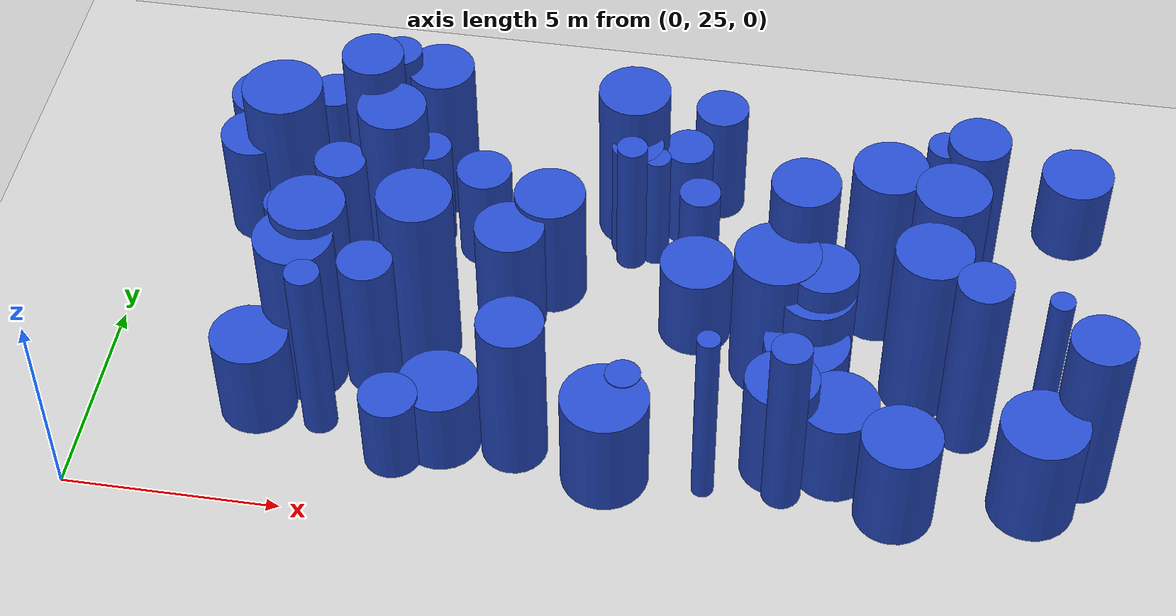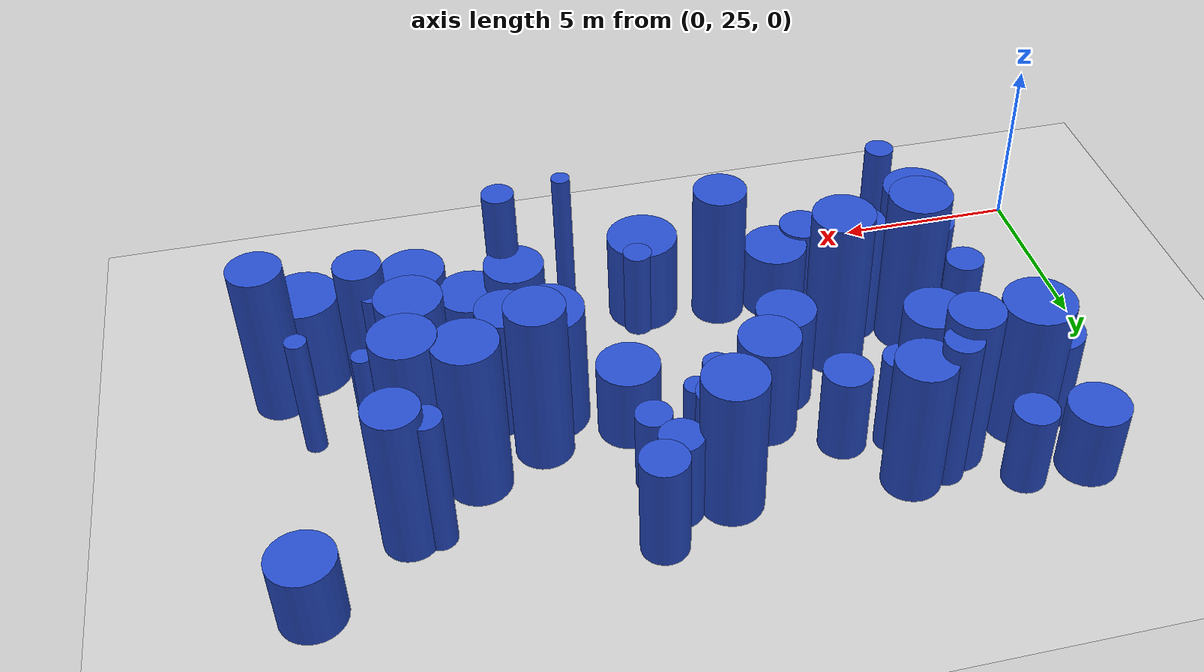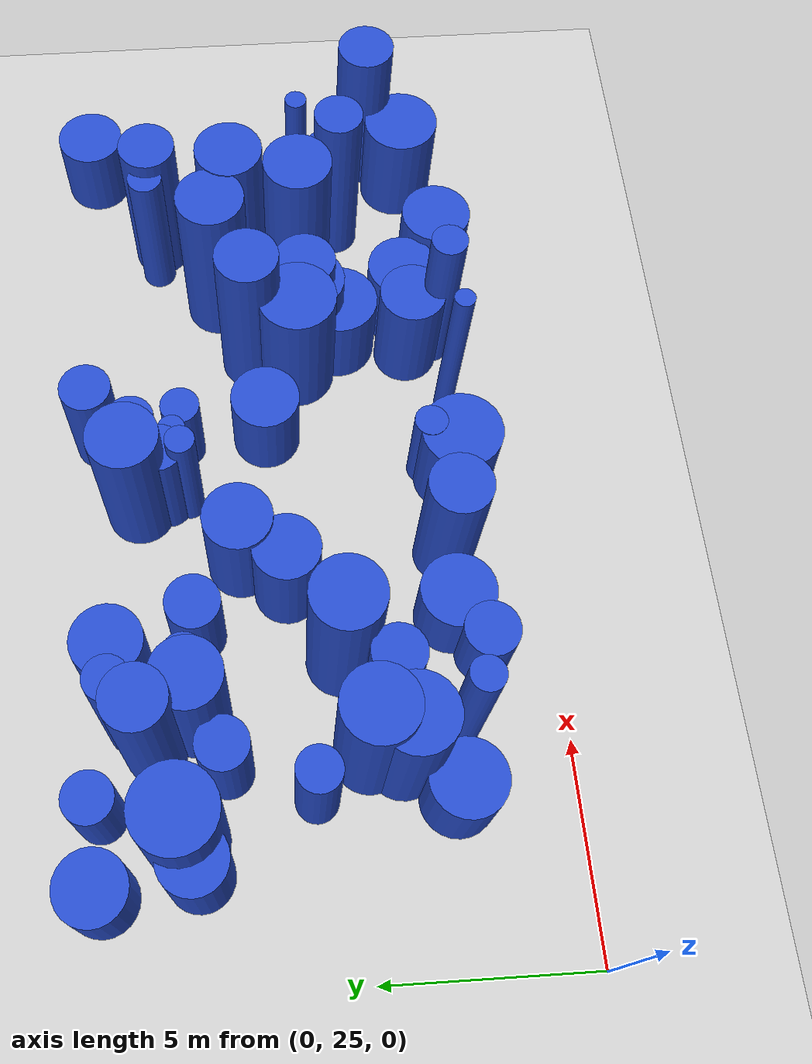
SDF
<sdf version="1.6">
 <world name="default">
  <model name="ground_plane">
   <static>1</static>
   <link name="link">
    <collision name="collision">
     <geometry><plane><normal>0 0 1</normal><size>100 100</size></plane></geometry>
     <surface><friction><ode><mu>100</mu><mu2>50</mu2></ode></friction></surface>
    </collision>
    <visual name="visual">
     <cast_shadows>0</cast_shadows>
     <geometry><plane><normal>0 0 1</normal><size>100 100</size></plane></geometry>
     <material>
      <script><uri>file://media/materials/scripts/gazebo.material</uri><name>Gazebo/Grey</name></script>
     </material>
    </visual>
   </link>
  </model>
  <model name="1">
   <static>0</static>
   <link name="link">
    <inertial>
     <mass>2</mass>
     <inertia><ixx>1.21264</ixx><ixy>0</ixy><ixz>0</ixz><iyy>1.21264</iyy><iyz>0</iyz><izz>0.729702</izz></inertia>
    </inertial>
    <collision name="collision">
     <geometry><cylinder><length>2.25538</length><radius>0.854226</radius></cylinder></geometry>
     <surface><contact><collide_without_contact>1</collide_without_contact></contact></surface>
    </collision>
    <visual name="visual">
     <geometry><cylinder><length>2.25538</length><radius>0.854226</radius></cylinder></geometry>
     <material>
      <script><uri>file://media/materials/scripts/gazebo.material</uri><name>Gazebo/Blue</name></script>
     </material>
    </visual>
    <gravity>0</gravity>
   </link>
   <pose>13.3804 31.6772 1.12769 0 -0 0</pose>
  </model>
  <model name="4">
   <static>0</static>
   <link name="link">
    <inertial>
     <mass>2</mass>
     <inertia>
      <ixx>2.26503</ixx>
      <ixy>0</ixy>
      <ixz>0</ixz>
      <iyy>2.26503</iyy>
      <iyz>0</iyz>
      <izz>0.0810352</izz>
     </inertia>
    </inertial>
    <collision name="collision">
     <geometry><cylinder><length>3.65337</length><radius>0.284667</radius></cylinder></geometry>
     <surface><contact><collide_without_contact>1</collide_without_contact></contact></surface>
    </collision>
    <visual name="visual">
     <geometry><cylinder><length>3.65337</length><radius>0.284667</radius></cylinder></geometry>
     <material>
      <script><uri>file://media/materials/scripts/gazebo.material</uri><name>Gazebo/Blue</name></script>
     </material>
    </visual>
    <gravity>0</gravity>
   </link>
   <pose>21.5602 30.4174 1.82668 0 -0 0</pose>
  </model>
  <model name="5">
   <static>0</static>
   <link name="link">
    <inertial>
     <mass>2</mass>
     <inertia><ixx>2.0117</ixx><ixy>0</ixy><ixz>0</ixz><iyy>2.0117</iyy><iyz>0</iyz><izz>0.692416</izz></inertia>
    </inertial>
    <collision name="collision">
     <geometry><cylinder><length>3.16116</length><radius>0.832116</radius></cylinder></geometry>
     <surface><contact><collide_without_contact>1</collide_without_contact></contact></surface>
    </collision>
    <visual name="visual">
     <geometry><cylinder><length>3.16116</length><radius>0.832116</radius></cylinder></geometry>
     <material>
      <script><uri>file://media/materials/scripts/gazebo.material</uri><name>Gazebo/Blue</name></script>
     </material>
    </visual>
    <gravity>0</gravity>
   </link>
   <pose>9.83556 32.4698 1.58058 0 -0 0</pose>
  </model>
  <model name="6">
   <static>0</static>
   <link name="link">
    <inertial>
     <mass>2</mass>
     <inertia><ixx>1.5744</ixx><ixy>0</ixy><ixz>0</ixz><iyy>1.5744</iyy><iyz>0</iyz><izz>0.233531</izz></inertia>
    </inertial>
    <collision name="collision">
     <geometry><cylinder><length>2.95733</length><radius>0.483251</radius></cylinder></geometry>
     <surface><contact><collide_without_contact>1</collide_without_contact></contact></surface>
    </collision>
    <visual name="visual">
     <geometry><cylinder><length>2.95733</length><radius>0.483251</radius></cylinder></geometry>
     <material>
      <script><uri>file://media/materials/scripts/gazebo.material</uri><name>Gazebo/Blue</name></script>
     </material>
    </visual>
    <gravity>0</gravity>
   </link>
   <pose>6.75771 33.7908 1.47867 0 -0 0</pose>
  </model>
  <model name="7">
   <static>0</static>
   <link name="link">
    <inertial>
     <mass>2</mass>
     <inertia><ixx>4.42007</ixx><ixy>0</ixy><ixz>0</ixz><iyy>4.42007</iyy><iyz>0</iyz><izz>0.725358</izz></inertia>
    </inertial>
    <collision name="collision">
     <geometry><cylinder><length>4.934</length><radius>0.85168</radius></cylinder></geometry>
     <surface><contact><collide_without_contact>1</collide_without_contact></contact></surface>
    </collision>
    <visual name="visual">
     <geometry><cylinder><length>4.934</length><radius>0.85168</radius></cylinder></geometry>
     <material>
      <script><uri>file://media/materials/scripts/gazebo.material</uri><name>Gazebo/Blue</name></script>
     </material>
    </visual>
    <gravity>0</gravity>
   </link>
   <pose>7.21815 30.2077 2.467 0 -0 0</pose>
  </model>
  <model name="16">
   <static>0</static>
   <link name="link">
    <inertial>
     <mass>2</mass>
     <inertia><ixx>1.32738</ixx><ixy>0</ixy><ixz>0</ixz><iyy>1.32738</iyy><iyz>0</iyz><izz>0.945054</izz></inertia>
    </inertial>
    <collision name="collision">
     <geometry><cylinder><length>2.26476</length><radius>0.972139</radius></cylinder></geometry>
     <surface><contact><collide_without_contact>1</collide_without_contact></contact></surface>
    </collision>
    <visual name="visual">
     <geometry><cylinder><length>2.26476</length><radius>0.972139</radius></cylinder></geometry>
     <material>
      <script><uri>file://media/materials/scripts/gazebo.material</uri><name>Gazebo/Blue</name></script>
     </material>
    </visual>
    <gravity>0</gravity>
   </link>
   <pose>16.1139 29.627 1.13238 0 -0 0</pose>
  </model>
  <model name="19">
   <static>0</static>
   <link name="link">
    <inertial>
     <mass>2</mass>
     <inertia><ixx>1.33118</ixx><ixy>0</ixy><ixz>0</ixz><iyy>1.33118</iyy><iyz>0</iyz><izz>0.426868</izz></inertia>
    </inertial>
    <collision name="collision">
     <geometry><cylinder><length>2.58969</length><radius>0.653352</radius></cylinder></geometry>
     <surface><contact><collide_without_contact>1</collide_without_contact></contact></surface>
    </collision>
    <visual name="visual">
     <geometry><cylinder><length>2.58969</length><radius>0.653352</radius></cylinder></geometry>
     <material>
      <script><uri>file://media/materials/scripts/gazebo.material</uri><name>Gazebo/Blue</name></script>
     </material>
    </visual>
    <gravity>0</gravity>
   </link>
   <pose>8.06166 33.5749 1.29484 0 -0 0</pose>
  </model>
  <model name="29">
   <static>0</static>
   <link name="link">
    <inertial>
     <mass>2</mass>
     <inertia><ixx>1.08444</ixx><ixy>0</ixy><ixz>0</ixz><iyy>1.08444</iyy><iyz>0</iyz><izz>0.820187</izz></inertia>
    </inertial>
    <collision name="collision">
     <geometry><cylinder><length>2.01148</length><radius>0.905642</radius></cylinder></geometry>
     <surface><contact><collide_without_contact>1</collide_without_contact></contact></surface>
    </collision>
    <visual name="visual">
     <geometry><cylinder><length>2.01148</length><radius>0.905642</radius></cylinder></geometry>
     <material>
      <script><uri>file://media/materials/scripts/gazebo.material</uri><name>Gazebo/Blue</name></script>
     </material>
    </visual>
    <gravity>0</gravity>
   </link>
   <pose>8.17215 27.4661 1.00574 0 -0 0</pose>
  </model>
  <model name="48">
   <static>0</static>
   <link name="link">
    <inertial>
     <mass>2</mass>
     <inertia><ixx>2.37656</ixx><ixy>0</ixy><ixz>0</ixz><iyy>2.37656</iyy><iyz>0</iyz><izz>0.127367</izz></inertia>
    </inertial>
    <collision name="collision">
     <geometry><cylinder><length>3.72522</length><radius>0.356886</radius></cylinder></geometry>
     <surface><contact><collide_without_contact>1</collide_without_contact></contact></surface>
    </collision>
    <visual name="visual">
     <geometry><cylinder><length>3.72522</length><radius>0.356886</radius></cylinder></geometry>
     <material>
      <script><uri>file://media/materials/scripts/gazebo.material</uri><name>Gazebo/Blue</name></script>
     </material>
    </visual>
    <gravity>0</gravity>
   </link>
   <pose>11.5725 33.7002 1.86261 0 -0 0</pose>
  </model>
  <model name="56">
   <static>0</static>
   <link name="link">
    <inertial>
     <mass>2</mass>
     <inertia><ixx>3.59824</ixx><ixy>0</ixy><ixz>0</ixz><iyy>3.59824</iyy><iyz>0</iyz><izz>0.250935</izz></inertia>
    </inertial>
    <collision name="collision">
     <geometry><cylinder><length>4.56471</length><radius>0.500934</radius></cylinder></geometry>
     <surface><contact><collide_without_contact>1</collide_without_contact></contact></surface>
    </collision>
    <visual name="visual">
     <geometry><cylinder><length>4.56471</length><radius>0.500934</radius></cylinder></geometry>
     <material>
      <script><uri>file://media/materials/scripts/gazebo.material</uri><name>Gazebo/Blue</name></script>
     </material>
    </visual>
    <gravity>0</gravity>
   </link>
   <pose>5.82661 35.2325 2.28236 0 -0 0</pose>
  </model>
  <model name="58">
   <static>0</static>
   <link name="link">
    <inertial>
     <mass>2</mass>
     <inertia>
      <ixx>0.949847</ixx>
      <ixy>0</ixy>
      <ixz>0</ixz>
      <iyy>0.949847</iyy>
      <iyz>0</iyz>
      <izz>0.437259</izz>
     </inertia>
    </inertial>
    <collision name="collision">
     <geometry><cylinder><length>2.09459</length><radius>0.661256</radius></cylinder></geometry>
     <surface><contact><collide_without_contact>1</collide_without_contact></contact></surface>
    </collision>
    <visual name="visual">
     <geometry><cylinder><length>2.09459</length><radius>0.661256</radius></cylinder></geometry>
     <material>
      <script><uri>file://media/materials/scripts/gazebo.material</uri><name>Gazebo/Blue</name></script>
     </material>
    </visual>
    <gravity>0</gravity>
   </link>
   <pose>7.17508 26.8264 1.0473 0 -0 0</pose>
  </model>
  <model name="67">
   <static>0</static>
   <link name="link">
    <inertial>
     <mass>2</mass>
     <inertia><ixx>1.85481</ixx><ixy>0</ixy><ixz>0</ixz><iyy>1.85481</iyy><iyz>0</iyz><izz>0.656961</izz></inertia>
    </inertial>
    <collision name="collision">
     <geometry><cylinder><length>3.02622</length><radius>0.810531</radius></cylinder></geometry>
     <surface><contact><collide_without_contact>1</collide_without_contact></contact></surface>
    </collision>
    <visual name="visual">
     <geometry><cylinder><length>3.02622</length><radius>0.810531</radius></cylinder></geometry>
     <material>
      <script><uri>file://media/materials/scripts/gazebo.material</uri><name>Gazebo/Blue</name></script>
     </material>
    </visual>
    <gravity>0</gravity>
   </link>
   <pose>9.07332 31.391 1.51311 0 -0 0</pose>
  </model>
  <model name="82">
   <static>0</static>
   <link name="link">
    <inertial>
     <mass>2</mass>
     <inertia><ixx>4.3118</ixx><ixy>0</ixy><ixz>0</ixz><iyy>4.3118</iyy><iyz>0</iyz><izz>0.716324</izz></inertia>
    </inertial>
    <collision name="collision">
     <geometry><cylinder><length>4.8705</length><radius>0.846359</radius></cylinder></geometry>
     <surface><contact><collide_without_contact>1</collide_without_contact></contact></surface>
    </collision>
    <visual name="visual">
     <geometry><cylinder><length>4.8705</length><radius>0.846359</radius></cylinder></geometry>
     <material>
      <script><uri>file://media/materials/scripts/gazebo.material</uri><name>Gazebo/Blue</name></script>
     </material>
    </visual>
    <gravity>0</gravity>
   </link>
   <pose>18.9631 32.2529 2.43525 0 -0 0</pose>
  </model>
  <model name="104">
   <static>0</static>
   <link name="link">
    <inertial>
     <mass>2</mass>
     <inertia>
      <ixx>3.16843</ixx>
      <ixy>0</ixy>
      <ixz>0</ixz>
      <iyy>3.16843</iyy>
      <iyz>0</iyz>
      <izz>0.0656022</izz>
     </inertia>
    </inertial>
    <collision name="collision">
     <geometry><cylinder><length>4.33748</length><radius>0.256129</radius></cylinder></geometry>
     <surface><contact><collide_without_contact>1</collide_without_contact></contact></surface>
    </collision>
    <visual name="visual">
     <geometry><cylinder><length>4.33748</length><radius>0.256129</radius></cylinder></geometry>
     <material>
      <script><uri>file://media/materials/scripts/gazebo.material</uri><name>Gazebo/Blue</name></script>
     </material>
    </visual>
    <gravity>0</gravity>
   </link>
   <pose>19.5779 29.9421 2.16874 0 -0 0</pose>
  </model>
  <model name="109">
   <static>0</static>
   <link name="link">
    <inertial>
     <mass>2</mass>
     <inertia><ixx>1.35394</ixx><ixy>0</ixy><ixz>0</ixz><iyy>1.35394</iyy><iyz>0</iyz><izz>0.777364</izz></inertia>
    </inertial>
    <collision name="collision">
     <geometry><cylinder><length>2.40656</length><radius>0.881682</radius></cylinder></geometry>
     <surface><contact><collide_without_contact>1</collide_without_contact></contact></surface>
    </collision>
    <visual name="visual">
     <geometry><cylinder><length>2.40656</length><radius>0.881682</radius></cylinder></geometry>
     <material>
      <script><uri>file://media/materials/scripts/gazebo.material</uri><name>Gazebo/Blue</name></script>
     </material>
    </visual>
    <gravity>0</gravity>
   </link>
   <pose>3.8228 27.8164 1.20328 0 -0 0</pose>
  </model>
  <model name="146">
   <static>0</static>
   <link name="link">
    <inertial>
     <mass>2</mass>
     <inertia><ixx>1.08759</ixx><ixy>0</ixy><ixz>0</ixz><iyy>1.08759</iyy><iyz>0</iyz><izz>0.739823</izz></inertia>
    </inertial>
    <collision name="collision">
     <geometry><cylinder><length>2.07511</length><radius>0.86013</radius></cylinder></geometry>
     <surface><contact><collide_without_contact>1</collide_without_contact></contact></surface>
    </collision>
    <visual name="visual">
     <geometry><cylinder><length>2.07511</length><radius>0.86013</radius></cylinder></geometry>
     <material>
      <script><uri>file://media/materials/scripts/gazebo.material</uri><name>Gazebo/Blue</name></script>
     </material>
    </visual>
    <gravity>0</gravity>
   </link>
   <pose>21.9815 36.1023 1.03756 0 -0 0</pose>
  </model>
  <model name="154">
   <static>0</static>
   <link name="link">
    <inertial>
     <mass>2</mass>
     <inertia><ixx>4.12797</ixx><ixy>0</ixy><ixz>0</ixz><iyy>4.12797</iyy><iyz>0</iyz><izz>0.151863</izz></inertia>
    </inertial>
    <collision name="collision">
     <geometry><cylinder><length>4.93075</length><radius>0.389697</radius></cylinder></geometry>
     <surface><contact><collide_without_contact>1</collide_without_contact></contact></surface>
    </collision>
    <visual name="visual">
     <geometry><cylinder><length>4.93075</length><radius>0.389697</radius></cylinder></geometry>
     <material>
      <script><uri>file://media/materials/scripts/gazebo.material</uri><name>Gazebo/Blue</name></script>
     </material>
    </visual>
    <gravity>0</gravity>
   </link>
   <pose>5.33287 27.5633 2.46537 0 -0 0</pose>
  </model>
  <model name="156">
   <static>0</static>
   <link name="link">
    <inertial>
     <mass>2</mass>
     <inertia>
      <ixx>4.18262</ixx>
      <ixy>0</ixy>
      <ixz>0</ixz>
      <iyy>4.18262</iyy>
      <iyz>0</iyz>
      <izz>0.0641521</izz>
     </inertia>
    </inertial>
    <collision name="collision">
     <geometry><cylinder><length>4.99032</length><radius>0.253283</radius></cylinder></geometry>
     <surface><contact><collide_without_contact>1</collide_without_contact></contact></surface>
    </collision>
    <visual name="visual">
     <geometry><cylinder><length>4.99032</length><radius>0.253283</radius></cylinder></geometry>
     <material>
      <script><uri>file://media/materials/scripts/gazebo.material</uri><name>Gazebo/Blue</name></script>
     </material>
    </visual>
    <gravity>0</gravity>
   </link>
   <pose>14.1669 26.9517 2.49516 0 -0 0</pose>
  </model>
  <model name="163">
   <static>0</static>
   <link name="link">
    <inertial>
     <mass>2</mass>
     <inertia><ixx>1.67128</ixx><ixy>0</ixy><ixz>0</ixz><iyy>1.67128</iyy><iyz>0</iyz><izz>0.985146</izz></inertia>
    </inertial>
    <collision name="collision">
     <geometry><cylinder><length>2.65937</length><radius>0.992545</radius></cylinder></geometry>
     <surface><contact><collide_without_contact>1</collide_without_contact></contact></surface>
    </collision>
    <visual name="visual">
     <geometry><cylinder><length>2.65937</length><radius>0.992545</radius></cylinder></geometry>
     <material>
      <script><uri>file://media/materials/scripts/gazebo.material</uri><name>Gazebo/Blue</name></script>
     </material>
    </visual>
    <gravity>0</gravity>
   </link>
   <pose>11.9619 26.9951 1.32968 0 -0 0</pose>
  </model>
  <model name="170">
   <static>0</static>
   <link name="link">
    <inertial>
     <mass>2</mass>
     <inertia><ixx>1.02657</ixx><ixy>0</ixy><ixz>0</ixz><iyy>1.02657</iyy><iyz>0</iyz><izz>0.183849</izz></inertia>
    </inertial>
    <collision name="collision">
     <geometry><cylinder><length>2.36809</length><radius>0.428776</radius></cylinder></geometry>
     <surface><contact><collide_without_contact>1</collide_without_contact></contact></surface>
    </collision>
    <visual name="visual">
     <geometry><cylinder><length>2.36809</length><radius>0.428776</radius></cylinder></geometry>
     <material>
      <script><uri>file://media/materials/scripts/gazebo.material</uri><name>Gazebo/Blue</name></script>
     </material>
    </visual>
    <gravity>0</gravity>
   </link>
   <pose>17.7544 32.4735 1.18405 0 -0 0</pose>
  </model>
  <model name="171">
   <static>0</static>
   <link name="link">
    <inertial>
     <mass>2</mass>
     <inertia><ixx>1.28355</ixx><ixy>0</ixy><ixz>0</ixz><iyy>1.28355</iyy><iyz>0</iyz><izz>0.163522</izz></inertia>
    </inertial>
    <collision name="collision">
     <geometry><cylinder><length>2.68528</length><radius>0.404379</radius></cylinder></geometry>
     <surface><contact><collide_without_contact>1</collide_without_contact></contact></surface>
    </collision>
    <visual name="visual">
     <geometry><cylinder><length>2.68528</length><radius>0.404379</radius></cylinder></geometry>
     <material>
      <script><uri>file://media/materials/scripts/gazebo.material</uri><name>Gazebo/Blue</name></script>
     </material>
    </visual>
    <gravity>0</gravity>
   </link>
   <pose>12.2518 27.7163 1.34264 0 -0 0</pose>
  </model>
  <model name="172">
   <static>0</static>
   <link name="link">
    <inertial>
     <mass>2</mass>
     <inertia>
      <ixx>1.41675</ixx>
      <ixy>0</ixy>
      <ixz>0</ixz>
      <iyy>1.41675</iyy>
      <iyz>0</iyz>
      <izz>0.0784457</izz>
     </inertia>
    </inertial>
    <collision name="collision">
     <geometry><cylinder><length>2.87492</length><radius>0.280082</radius></cylinder></geometry>
     <surface><contact><collide_without_contact>1</collide_without_contact></contact></surface>
    </collision>
    <visual name="visual">
     <geometry><cylinder><length>2.87492</length><radius>0.280082</radius></cylinder></geometry>
     <material>
      <script><uri>file://media/materials/scripts/gazebo.material</uri><name>Gazebo/Blue</name></script>
     </material>
    </visual>
    <gravity>0</gravity>
   </link>
   <pose>20.0262 30.4477 1.43746 0 -0 0</pose>
  </model>
  <model name="174">
   <static>0</static>
   <link name="link">
    <inertial>
     <mass>2</mass>
     <inertia><ixx>1.84606</ixx><ixy>0</ixy><ixz>0</ixz><iyy>1.84606</iyy><iyz>0</iyz><izz>0.100943</izz></inertia>
    </inertial>
    <collision name="collision">
     <geometry><cylinder><length>3.2823</length><radius>0.317715</radius></cylinder></geometry>
     <surface><contact><collide_without_contact>1</collide_without_contact></contact></surface>
    </collision>
    <visual name="visual">
     <geometry><cylinder><length>3.2823</length><radius>0.317715</radius></cylinder></geometry>
     <material>
      <script><uri>file://media/materials/scripts/gazebo.material</uri><name>Gazebo/Blue</name></script>
     </material>
    </visual>
    <gravity>0</gravity>
   </link>
   <pose>12.1348 33.9097 1.64115 0 -0 0</pose>
  </model>
  <model name="187">
   <static>0</static>
   <link name="link">
    <inertial>
     <mass>2</mass>
     <inertia><ixx>2.01351</ixx><ixy>0</ixy><ixz>0</ixz><iyy>2.01351</iyy><iyz>0</iyz><izz>0.791841</izz></inertia>
    </inertial>
    <collision name="collision">
     <geometry><cylinder><length>3.11537</length><radius>0.889855</radius></cylinder></geometry>
     <surface><contact><collide_without_contact>1</collide_without_contact></contact></surface>
    </collision>
    <visual name="visual">
     <geometry><cylinder><length>3.11537</length><radius>0.889855</radius></cylinder></geometry>
     <material>
      <script><uri>file://media/materials/scripts/gazebo.material</uri><name>Gazebo/Blue</name></script>
     </material>
    </visual>
    <gravity>0</gravity>
   </link>
   <pose>16.2188 30.4013 1.55769 0 -0 0</pose>
  </model>
  <model name="195">
   <static>0</static>
   <link name="link">
    <inertial>
     <mass>2</mass>
     <inertia><ixx>2.5919</ixx><ixy>0</ixy><ixz>0</ixz><iyy>2.5919</iyy><iyz>0</iyz><izz>0.39216</izz></inertia>
    </inertial>
    <collision name="collision">
     <geometry><cylinder><length>3.79142</length><radius>0.626227</radius></cylinder></geometry>
     <surface><contact><collide_without_contact>1</collide_without_contact></contact></surface>
    </collision>
    <visual name="visual">
     <geometry><cylinder><length>3.79142</length><radius>0.626227</radius></cylinder></geometry>
     <material>
      <script><uri>file://media/materials/scripts/gazebo.material</uri><name>Gazebo/Blue</name></script>
     </material>
    </visual>
    <gravity>0</gravity>
   </link>
   <pose>6.25732 29.1597 1.89571 0 -0 0</pose>
  </model>
  <model name="217">
   <static>0</static>
   <link name="link">
    <inertial>
     <mass>2</mass>
     <inertia><ixx>3.83964</ixx><ixy>0</ixy><ixz>0</ixz><iyy>3.83964</iyy><iyz>0</iyz><izz>0.525339</izz></inertia>
    </inertial>
    <collision name="collision">
     <geometry><cylinder><length>4.63269</length><radius>0.724803</radius></cylinder></geometry>
     <surface><contact><collide_without_contact>1</collide_without_contact></contact></surface>
    </collision>
    <visual name="visual">
     <geometry><cylinder><length>4.63269</length><radius>0.724803</radius></cylinder></geometry>
     <material>
      <script><uri>file://media/materials/scripts/gazebo.material</uri><name>Gazebo/Blue</name></script>
     </material>
    </visual>
    <gravity>0</gravity>
   </link>
   <pose>22.3496 28.5182 2.31634 0 -0 0</pose>
  </model>
  <model name="224">
   <static>0</static>
   <link name="link">
    <inertial>
     <mass>2</mass>
     <inertia><ixx>1.81232</ixx><ixy>0</ixy><ixz>0</ixz><iyy>1.81232</iyy><iyz>0</iyz><izz>0.395815</izz></inertia>
    </inertial>
    <collision name="collision">
     <geometry><cylinder><length>3.11231</length><radius>0.629138</radius></cylinder></geometry>
     <surface><contact><collide_without_contact>1</collide_without_contact></contact></surface>
    </collision>
    <visual name="visual">
     <geometry><cylinder><length>3.11231</length><radius>0.629138</radius></cylinder></geometry>
     <material>
      <script><uri>file://media/materials/scripts/gazebo.material</uri><name>Gazebo/Blue</name></script>
     </material>
    </visual>
    <gravity>0</gravity>
   </link>
   <pose>13.4233 35.9812 1.55615 0 -0 0</pose>
  </model>
  <model name="225">
   <static>0</static>
   <link name="link">
    <inertial>
     <mass>2</mass>
     <inertia><ixx>1.09095</ixx><ixy>0</ixy><ixz>0</ixz><iyy>1.09095</iyy><iyz>0</iyz><izz>0.236588</izz></inertia>
    </inertial>
    <collision name="collision">
     <geometry><cylinder><length>2.41576</length><radius>0.486403</radius></cylinder></geometry>
     <surface><contact><collide_without_contact>1</collide_without_contact></contact></surface>
    </collision>
    <visual name="visual">
     <geometry><cylinder><length>2.41576</length><radius>0.486403</radius></cylinder></geometry>
     <material>
      <script><uri>file://media/materials/scripts/gazebo.material</uri><name>Gazebo/Blue</name></script>
     </material>
    </visual>
    <gravity>0</gravity>
   </link>
   <pose>13.1849 33.7729 1.20788 0 -0 0</pose>
  </model>
  <model name="229">
   <static>0</static>
   <link name="link">
    <inertial>
     <mass>2</mass>
     <inertia><ixx>3.80264</ixx><ixy>0</ixy><ixz>0</ixz><iyy>3.80264</iyy><iyz>0</iyz><izz>0.790646</izz></inertia>
    </inertial>
    <collision name="collision">
     <geometry><cylinder><length>4.5215</length><radius>0.889183</radius></cylinder></geometry>
     <surface><contact><collide_without_contact>1</collide_without_contact></contact></surface>
    </collision>
    <visual name="visual">
     <geometry><cylinder><length>4.5215</length><radius>0.889183</radius></cylinder></geometry>
     <material>
      <script><uri>file://media/materials/scripts/gazebo.material</uri><name>Gazebo/Blue</name></script>
     </material>
    </visual>
    <gravity>0</gravity>
   </link>
   <pose>4.7447 28.9707 2.26075 0 -0 0</pose>
  </model>
  <model name="230">
   <static>0</static>
   <link name="link">
    <inertial>
     <mass>2</mass>
     <inertia><ixx>3.41494</ixx><ixy>0</ixy><ixz>0</ixz><iyy>3.41494</iyy><iyz>0</iyz><izz>0.90543</izz></inertia>
    </inertial>
    <collision name="collision">
     <geometry><cylinder><length>4.21584</length><radius>0.951541</radius></cylinder></geometry>
     <surface><contact><collide_without_contact>1</collide_without_contact></contact></surface>
    </collision>
    <visual name="visual">
     <geometry><cylinder><length>4.21584</length><radius>0.951541</radius></cylinder></geometry>
     <material>
      <script><uri>file://media/materials/scripts/gazebo.material</uri><name>Gazebo/Blue</name></script>
     </material>
    </visual>
    <gravity>0</gravity>
   </link>
   <pose>3.2388 33.946 2.10792 0 -0 0</pose>
  </model>
  <model name="247">
   <static>0</static>
   <link name="link">
    <inertial>
     <mass>2</mass>
     <inertia><ixx>4.27196</ixx><ixy>0</ixy><ixz>0</ixz><iyy>4.27196</iyy><iyz>0</iyz><izz>0.723791</izz></inertia>
    </inertial>
    <collision name="collision">
     <geometry><cylinder><length>4.84359</length><radius>0.850759</radius></cylinder></geometry>
     <surface><contact><collide_without_contact>1</collide_without_contact></contact></surface>
    </collision>
    <visual name="visual">
     <geometry><cylinder><length>4.84359</length><radius>0.850759</radius></cylinder></geometry>
     <material>
      <script><uri>file://media/materials/scripts/gazebo.material</uri><name>Gazebo/Blue</name></script>
     </material>
    </visual>
    <gravity>0</gravity>
   </link>
   <pose>17.5417 32.7599 2.4218 0 -0 0</pose>
  </model>
  <model name="254">
   <static>0</static>
   <link name="link">
    <inertial>
     <mass>2</mass>
     <inertia><ixx>1.11774</ixx><ixy>0</ixy><ixz>0</ixz><iyy>1.11774</iyy><iyz>0</iyz><izz>0.673304</izz></inertia>
    </inertial>
    <collision name="collision">
     <geometry><cylinder><length>2.16484</length><radius>0.820551</radius></cylinder></geometry>
     <surface><contact><collide_without_contact>1</collide_without_contact></contact></surface>
    </collision>
    <visual name="visual">
     <geometry><cylinder><length>2.16484</length><radius>0.820551</radius></cylinder></geometry>
     <material>
      <script><uri>file://media/materials/scripts/gazebo.material</uri><name>Gazebo/Blue</name></script>
     </material>
    </visual>
    <gravity>0</gravity>
   </link>
   <pose>2.12926 35.856 1.08242 0 -0 0</pose>
  </model>
  <model name="262">
   <static>0</static>
   <link name="link">
    <inertial>
     <mass>2</mass>
     <inertia><ixx>2.10908</ixx><ixy>0</ixy><ixz>0</ixz><iyy>2.10908</iyy><iyz>0</iyz><izz>0.264738</izz></inertia>
    </inertial>
    <collision name="collision">
     <geometry><cylinder><length>3.44388</length><radius>0.514527</radius></cylinder></geometry>
     <surface><contact><collide_without_contact>1</collide_without_contact></contact></surface>
    </collision>
    <visual name="visual">
     <geometry><cylinder><length>3.44388</length><radius>0.514527</radius></cylinder></geometry>
     <material>
      <script><uri>file://media/materials/scripts/gazebo.material</uri><name>Gazebo/Blue</name></script>
     </material>
    </visual>
    <gravity>0</gravity>
   </link>
   <pose>3.97983 31.0063 1.72194 0 -0 0</pose>
  </model>
  <model name="267">
   <static>0</static>
   <link name="link">
    <inertial>
     <mass>2</mass>
     <inertia><ixx>3.25775</ixx><ixy>0</ixy><ixz>0</ixz><iyy>3.25775</iyy><iyz>0</iyz><izz>0.56076</izz></inertia>
    </inertial>
    <collision name="collision">
     <geometry><cylinder><length>4.22661</length><radius>0.748839</radius></cylinder></geometry>
     <surface><contact><collide_without_contact>1</collide_without_contact></contact></surface>
    </collision>
    <visual name="visual">
     <geometry><cylinder><length>4.22661</length><radius>0.748839</radius></cylinder></geometry>
     <material>
      <script><uri>file://media/materials/scripts/gazebo.material</uri><name>Gazebo/Blue</name></script>
     </material>
    </visual>
    <gravity>0</gravity>
   </link>
   <pose>9.84296 27.4597 2.1133 0 -0 0</pose>
  </model>
  <model name="279">
   <static>0</static>
   <link name="link">
    <inertial>
     <mass>2</mass>
     <inertia><ixx>2.86683</ixx><ixy>0</ixy><ixz>0</ixz><iyy>2.86683</iyy><iyz>0</iyz><izz>0.957796</izz></inertia>
    </inertial>
    <collision name="collision">
     <geometry><cylinder><length>3.78518</length><radius>0.978671</radius></cylinder></geometry>
     <surface><contact><collide_without_contact>1</collide_without_contact></contact></surface>
    </collision>
    <visual name="visual">
     <geometry><cylinder><length>3.78518</length><radius>0.978671</radius></cylinder></geometry>
     <material>
      <script><uri>file://media/materials/scripts/gazebo.material</uri><name>Gazebo/Blue</name></script>
     </material>
    </visual>
    <gravity>0</gravity>
   </link>
   <pose>15.2745 30.773 1.89259 0 -0 0</pose>
  </model>
  <model name="301">
   <static>0</static>
   <link name="link">
    <inertial>
     <mass>2</mass>
     <inertia><ixx>1.84632</ixx><ixy>0</ixy><ixz>0</ixz><iyy>1.84632</iyy><iyz>0</iyz><izz>0.688339</izz></inertia>
    </inertial>
    <collision name="collision">
     <geometry><cylinder><length>3.00215</length><radius>0.829662</radius></cylinder></geometry>
     <surface><contact><collide_without_contact>1</collide_without_contact></contact></surface>
    </collision>
    <visual name="visual">
     <geometry><cylinder><length>3.00215</length><radius>0.829662</radius></cylinder></geometry>
     <material>
      <script><uri>file://media/materials/scripts/gazebo.material</uri><name>Gazebo/Blue</name></script>
     </material>
    </visual>
    <gravity>0</gravity>
   </link>
   <pose>15.7161 27.8278 1.50108 0 -0 0</pose>
  </model>
  <model name="303">
   <static>0</static>
   <link name="link">
    <inertial>
     <mass>2</mass>
     <inertia><ixx>3.18903</ixx><ixy>0</ixy><ixz>0</ixz><iyy>3.18903</iyy><iyz>0</iyz><izz>0.634556</izz></inertia>
    </inertial>
    <collision name="collision">
     <geometry><cylinder><length>4.15097</length><radius>0.79659</radius></cylinder></geometry>
     <surface><contact><collide_without_contact>1</collide_without_contact></contact></surface>
    </collision>
    <visual name="visual">
     <geometry><cylinder><length>4.15097</length><radius>0.79659</radius></cylinder></geometry>
     <material>
      <script><uri>file://media/materials/scripts/gazebo.material</uri><name>Gazebo/Blue</name></script>
     </material>
    </visual>
    <gravity>0</gravity>
   </link>
   <pose>6.7563 35.283 2.07548 0 -0 0</pose>
  </model>
  <model name="334">
   <static>0</static>
   <link name="link">
    <inertial>
     <mass>2</mass>
     <inertia><ixx>4.35673</ixx><ixy>0</ixy><ixz>0</ixz><iyy>4.35673</iyy><iyz>0</iyz><izz>0.380288</izz></inertia>
    </inertial>
    <collision name="collision">
     <geometry><cylinder><length>4.99995</length><radius>0.616675</radius></cylinder></geometry>
     <surface><contact><collide_without_contact>1</collide_without_contact></contact></surface>
    </collision>
    <visual name="visual">
     <geometry><cylinder><length>4.99995</length><radius>0.616675</radius></cylinder></geometry>
     <material>
      <script><uri>file://media/materials/scripts/gazebo.material</uri><name>Gazebo/Blue</name></script>
     </material>
    </visual>
    <gravity>0</gravity>
   </link>
   <pose>19.7871 29.4443 2.49997 0 -0 0</pose>
  </model>
  <model name="342">
   <static>0</static>
   <link name="link">
    <inertial>
     <mass>2</mass>
     <inertia><ixx>1.55359</ixx><ixy>0</ixy><ixz>0</ixz><iyy>1.55359</iyy><iyz>0</iyz><izz>0.792505</izz></inertia>
    </inertial>
    <collision name="collision">
     <geometry><cylinder><length>2.63515</length><radius>0.890227</radius></cylinder></geometry>
     <surface><contact><collide_without_contact>1</collide_without_contact></contact></surface>
    </collision>
    <visual name="visual">
     <geometry><cylinder><length>2.63515</length><radius>0.890227</radius></cylinder></geometry>
     <material>
      <script><uri>file://media/materials/scripts/gazebo.material</uri><name>Gazebo/Blue</name></script>
     </material>
    </visual>
    <gravity>0</gravity>
   </link>
   <pose>18.4009 26.9218 1.31758 0 -0 0</pose>
  </model>
  <model name="350">
   <static>0</static>
   <link name="link">
    <inertial>
     <mass>2</mass>
     <inertia><ixx>1.33476</ixx><ixy>0</ixy><ixz>0</ixz><iyy>1.33476</iyy><iyz>0</iyz><izz>0.809366</izz></inertia>
    </inertial>
    <collision name="collision">
     <geometry><cylinder><length>2.3623</length><radius>0.899648</radius></cylinder></geometry>
     <surface><contact><collide_without_contact>1</collide_without_contact></contact></surface>
    </collision>
    <visual name="visual">
     <geometry><cylinder><length>2.3623</length><radius>0.899648</radius></cylinder></geometry>
     <material>
      <script><uri>file://media/materials/scripts/gazebo.material</uri><name>Gazebo/Blue</name></script>
     </material>
    </visual>
    <gravity>0</gravity>
   </link>
   <pose>16.9744 27.9121 1.18115 0 -0 0</pose>
  </model>
  <model name="353">
   <static>0</static>
   <link name="link">
    <inertial>
     <mass>2</mass>
     <inertia><ixx>1.98407</ixx><ixy>0</ixy><ixz>0</ixz><iyy>1.98407</iyy><iyz>0</iyz><izz>0.37387</izz></inertia>
    </inertial>
    <collision name="collision">
     <geometry><cylinder><length>3.28372</length><radius>0.611449</radius></cylinder></geometry>
     <surface><contact><collide_without_contact>1</collide_without_contact></contact></surface>
    </collision>
    <visual name="visual">
     <geometry><cylinder><length>3.28372</length><radius>0.611449</radius></cylinder></geometry>
     <material>
      <script><uri>file://media/materials/scripts/gazebo.material</uri><name>Gazebo/Blue</name></script>
     </material>
    </visual>
    <gravity>0</gravity>
   </link>
   <pose>11.6253 34.2496 1.64186 0 -0 0</pose>
  </model>
  <model name="356">
   <static>0</static>
   <link name="link">
    <inertial>
     <mass>2</mass>
     <inertia><ixx>1.40128</ixx><ixy>0</ixy><ixz>0</ixz><iyy>1.40128</iyy><iyz>0</iyz><izz>0.342498</izz></inertia>
    </inertial>
    <collision name="collision">
     <geometry><cylinder><length>2.71665</length><radius>0.585234</radius></cylinder></geometry>
     <surface><contact><collide_without_contact>1</collide_without_contact></contact></surface>
    </collision>
    <visual name="visual">
     <geometry><cylinder><length>2.71665</length><radius>0.585234</radius></cylinder></geometry>
     <material>
      <script><uri>file://media/materials/scripts/gazebo.material</uri><name>Gazebo/Blue</name></script>
     </material>
    </visual>
    <gravity>0</gravity>
   </link>
   <pose>12.7609 34.9613 1.35833 0 -0 0</pose>
  </model>
  <model name="360">
   <static>0</static>
   <link name="link">
    <inertial>
     <mass>2</mass>
     <inertia><ixx>3.48706</ixx><ixy>0</ixy><ixz>0</ixz><iyy>3.48706</iyy><iyz>0</iyz><izz>0.717513</izz></inertia>
    </inertial>
    <collision name="collision">
     <geometry><cylinder><length>4.33241</length><radius>0.847061</radius></cylinder></geometry>
     <surface><contact><collide_without_contact>1</collide_without_contact></contact></surface>
    </collision>
    <visual name="visual">
     <geometry><cylinder><length>4.33241</length><radius>0.847061</radius></cylinder></geometry>
     <material>
      <script><uri>file://media/materials/scripts/gazebo.material</uri><name>Gazebo/Blue</name></script>
     </material>
    </visual>
    <gravity>0</gravity>
   </link>
   <pose>11.4473 34.9478 2.16621 0 -0 0</pose>
  </model>
  <model name="362">
   <static>0</static>
   <link name="link">
    <inertial>
     <mass>2</mass>
     <inertia><ixx>3.69059</ixx><ixy>0</ixy><ixz>0</ixz><iyy>3.69059</iyy><iyz>0</iyz><izz>0.508773</izz></inertia>
    </inertial>
    <collision name="collision">
     <geometry><cylinder><length>4.54062</length><radius>0.713283</radius></cylinder></geometry>
     <surface><contact><collide_without_contact>1</collide_without_contact></contact></surface>
    </collision>
    <visual name="visual">
     <geometry><cylinder><length>4.54062</length><radius>0.713283</radius></cylinder></geometry>
     <material>
      <script><uri>file://media/materials/scripts/gazebo.material</uri><name>Gazebo/Blue</name></script>
     </material>
    </visual>
    <gravity>0</gravity>
   </link>
   <pose>19.4758 34.3123 2.27031 0 -0 0</pose>
  </model>
  <model name="374">
   <static>0</static>
   <link name="link">
    <inertial>
     <mass>2</mass>
     <inertia><ixx>4.26071</ixx><ixy>0</ixy><ixz>0</ixz><iyy>4.26071</iyy><iyz>0</iyz><izz>0.524121</izz></inertia>
    </inertial>
    <collision name="collision">
     <geometry><cylinder><length>4.89815</length><radius>0.723962</radius></cylinder></geometry>
     <surface><contact><collide_without_contact>1</collide_without_contact></contact></surface>
    </collision>
    <visual name="visual">
     <geometry><cylinder><length>4.89815</length><radius>0.723962</radius></cylinder></geometry>
     <material>
      <script><uri>file://media/materials/scripts/gazebo.material</uri><name>Gazebo/Blue</name></script>
     </material>
    </visual>
    <gravity>0</gravity>
   </link>
   <pose>5.30486 34.6423 2.44908 0 -0 0</pose>
  </model>
  <model name="420">
   <static>0</static>
   <link name="link">
    <inertial>
     <mass>2</mass>
     <inertia><ixx>3.96151</ixx><ixy>0</ixy><ixz>0</ixz><iyy>3.96151</iyy><iyz>0</iyz><izz>0.753068</izz></inertia>
    </inertial>
    <collision name="collision">
     <geometry><cylinder><length>4.63787</length><radius>0.867795</radius></cylinder></geometry>
     <surface><contact><collide_without_contact>1</collide_without_contact></contact></surface>
    </collision>
    <visual name="visual">
     <geometry><cylinder><length>4.63787</length><radius>0.867795</radius></cylinder></geometry>
     <material>
      <script><uri>file://media/materials/scripts/gazebo.material</uri><name>Gazebo/Blue</name></script>
     </material>
    </visual>
    <gravity>0</gravity>
   </link>
   <pose>18.6713 30.5509 2.31894 0 -0 0</pose>
  </model>
  <model name="430">
   <static>0</static>
   <link name="link">
    <inertial>
     <mass>2</mass>
     <inertia><ixx>3.37407</ixx><ixy>0</ixy><ixz>0</ixz><iyy>3.37407</iyy><iyz>0</iyz><izz>0.654047</izz></inertia>
    </inertial>
    <collision name="collision">
     <geometry><cylinder><length>4.27578</length><radius>0.808732</radius></cylinder></geometry>
     <surface><contact><collide_without_contact>1</collide_without_contact></contact></surface>
    </collision>
    <visual name="visual">
     <geometry><cylinder><length>4.27578</length><radius>0.808732</radius></cylinder></geometry>
     <material>
      <script><uri>file://media/materials/scripts/gazebo.material</uri><name>Gazebo/Blue</name></script>
     </material>
    </visual>
    <gravity>0</gravity>
   </link>
   <pose>5.92986 33.6406 2.13789 0 -0 0</pose>
  </model>
  <model name="433">
   <static>0</static>
   <link name="link">
    <inertial>
     <mass>2</mass>
     <inertia><ixx>1.66764</ixx><ixy>0</ixy><ixz>0</ixz><iyy>1.66764</iyy><iyz>0</iyz><izz>0.373428</izz></inertia>
    </inertial>
    <collision name="collision">
     <geometry><cylinder><length>2.98086</length><radius>0.611087</radius></cylinder></geometry>
     <surface><contact><collide_without_contact>1</collide_without_contact></contact></surface>
    </collision>
    <visual name="visual">
     <geometry><cylinder><length>2.98086</length><radius>0.611087</radius></cylinder></geometry>
     <material>
      <script><uri>file://media/materials/scripts/gazebo.material</uri><name>Gazebo/Blue</name></script>
     </material>
    </visual>
    <gravity>0</gravity>
   </link>
   <pose>4.74884 33.0021 1.49043 0 -0 0</pose>
  </model>
  <model name="440">
   <static>0</static>
   <link name="link">
    <inertial>
     <mass>2</mass>
     <inertia><ixx>4.32949</ixx><ixy>0</ixy><ixz>0</ixz><iyy>4.32949</iyy><iyz>0</iyz><izz>0.610365</izz></inertia>
    </inertial>
    <collision name="collision">
     <geometry><cylinder><length>4.91384</length><radius>0.781259</radius></cylinder></geometry>
     <surface><contact><collide_without_contact>1</collide_without_contact></contact></surface>
    </collision>
    <visual name="visual">
     <geometry><cylinder><length>4.91384</length><radius>0.781259</radius></cylinder></geometry>
     <material>
      <script><uri>file://media/materials/scripts/gazebo.material</uri><name>Gazebo/Blue</name></script>
     </material>
    </visual>
    <gravity>0</gravity>
   </link>
   <pose>15.7188 31.945 2.45692 0 -0 0</pose>
  </model>
  <model name="444">
   <static>0</static>
   <link name="link">
    <inertial>
     <mass>2</mass>
     <inertia><ixx>4.23931</ixx><ixy>0</ixy><ixz>0</ixz><iyy>4.23931</iyy><iyz>0</iyz><izz>0.746196</izz></inertia>
    </inertial>
    <collision name="collision">
     <geometry><cylinder><length>4.81635</length><radius>0.863826</radius></cylinder></geometry>
     <surface><contact><collide_without_contact>1</collide_without_contact></contact></surface>
    </collision>
    <visual name="visual">
     <geometry><cylinder><length>4.81635</length><radius>0.863826</radius></cylinder></geometry>
     <material>
      <script><uri>file://media/materials/scripts/gazebo.material</uri><name>Gazebo/Blue</name></script>
     </material>
    </visual>
    <gravity>0</gravity>
   </link>
   <pose>4.90079 29.7369 2.40818 0 -0 0</pose>
  </model>
  <model name="468">
   <static>0</static>
   <link name="link">
    <inertial>
     <mass>2</mass>
     <inertia><ixx>4.0299</ixx><ixy>0</ixy><ixz>0</ixz><iyy>4.0299</iyy><iyz>0</iyz><izz>0.195977</izz></inertia>
    </inertial>
    <collision name="collision">
     <geometry><cylinder><length>4.8571</length><radius>0.442693</radius></cylinder></geometry>
     <surface><contact><collide_without_contact>1</collide_without_contact></contact></surface>
    </collision>
    <visual name="visual">
     <geometry><cylinder><length>4.8571</length><radius>0.442693</radius></cylinder></geometry>
     <material>
      <script><uri>file://media/materials/scripts/gazebo.material</uri><name>Gazebo/Blue</name></script>
     </material>
    </visual>
    <gravity>0</gravity>
   </link>
   <pose>15.9019 27.0826 2.42855 0 -0 0</pose>
  </model>
  <model name="487">
   <static>0</static>
   <link name="link">
    <inertial>
     <mass>2</mass>
     <inertia><ixx>2.65953</ixx><ixy>0</ixy><ixz>0</ixz><iyy>2.65953</iyy><iyz>0</iyz><izz>0.590981</izz></inertia>
    </inertial>
    <collision name="collision">
     <geometry><cylinder><length>3.76619</length><radius>0.768753</radius></cylinder></geometry>
     <surface><contact><collide_without_contact>1</collide_without_contact></contact></surface>
    </collision>
    <visual name="visual">
     <geometry><cylinder><length>3.76619</length><radius>0.768753</radius></cylinder></geometry>
     <material>
      <script><uri>file://media/materials/scripts/gazebo.material</uri><name>Gazebo/Blue</name></script>
     </material>
    </visual>
    <gravity>0</gravity>
   </link>
   <pose>16.3385 30.5117 1.8831 0 -0 0</pose>
  </model>
  <model name="491">
   <static>0</static>
   <link name="link">
    <inertial>
     <mass>2</mass>
     <inertia><ixx>1.16303</ixx><ixy>0</ixy><ixz>0</ixz><iyy>1.16303</iyy><iyz>0</iyz><izz>0.344407</izz></inertia>
    </inertial>
    <collision name="collision">
     <geometry><cylinder><length>2.43823</length><radius>0.586862</radius></cylinder></geometry>
     <surface><contact><collide_without_contact>1</collide_without_contact></contact></surface>
    </collision>
    <visual name="visual">
     <geometry><cylinder><length>2.43823</length><radius>0.586862</radius></cylinder></geometry>
     <material>
      <script><uri>file://media/materials/scripts/gazebo.material</uri><name>Gazebo/Blue</name></script>
     </material>
    </visual>
    <gravity>0</gravity>
   </link>
   <pose>3.90226 35.8955 1.21912 0 -0 0</pose>
  </model>
  <model name="492">
   <static>0</static>
   <link name="link">
    <inertial>
     <mass>2</mass>
     <inertia><ixx>2.98799</ixx><ixy>0</ixy><ixz>0</ixz><iyy>2.98799</iyy><iyz>0</iyz><izz>0.188626</izz></inertia>
    </inertial>
    <collision name="collision">
     <geometry><cylinder><length>4.16678</length><radius>0.434311</radius></cylinder></geometry>
     <surface><contact><collide_without_contact>1</collide_without_contact></contact></surface>
    </collision>
    <visual name="visual">
     <geometry><cylinder><length>4.16678</length><radius>0.434311</radius></cylinder></geometry>
     <material>
      <script><uri>file://media/materials/scripts/gazebo.material</uri><name>Gazebo/Blue</name></script>
     </material>
    </visual>
    <gravity>0</gravity>
   </link>
   <pose>18.7581 34.3983 2.08339 0 -0 0</pose>
  </model>
  <model name="493">
   <static>0</static>
   <link name="link">
    <inertial>
     <mass>2</mass>
     <inertia><ixx>1.8042</ixx><ixy>0</ixy><ixz>0</ixz><iyy>1.8042</iyy><iyz>0</iyz><izz>0.953544</izz></inertia>
    </inertial>
    <collision name="collision">
     <geometry><cylinder><length>2.82215</length><radius>0.976496</radius></cylinder></geometry>
     <surface><contact><collide_without_contact>1</collide_without_contact></contact></surface>
    </collision>
    <visual name="visual">
     <geometry><cylinder><length>2.82215</length><radius>0.976496</radius></cylinder></geometry>
     <material>
      <script><uri>file://media/materials/scripts/gazebo.material</uri><name>Gazebo/Blue</name></script>
     </material>
    </visual>
    <gravity>0</gravity>
   </link>
   <pose>21.3839 27.5681 1.41108 0 -0 0</pose>
  </model>
  <model name="499">
   <static>0</static>
   <link name="link">
    <inertial>
     <mass>2</mass>
     <inertia><ixx>1.67463</ixx><ixy>0</ixy><ixz>0</ixz><iyy>1.67463</iyy><iyz>0</iyz><izz>0.614819</izz></inertia>
    </inertial>
    <collision name="collision">
     <geometry><cylinder><length>2.86414</length><radius>0.784104</radius></cylinder></geometry>
     <surface><contact><collide_without_contact>1</collide_without_contact></contact></surface>
    </collision>
    <visual name="visual">
     <geometry><cylinder><length>2.86414</length><radius>0.784104</radius></cylinder></geometry>
     <material>
      <script><uri>file://media/materials/scripts/gazebo.material</uri><name>Gazebo/Blue</name></script>
     </material>
    </visual>
    <gravity>0</gravity>
   </link>
   <pose>2.47419 33.6941 1.43207 0 -0 0</pose>
  </model>
 </world>
</sdf>
